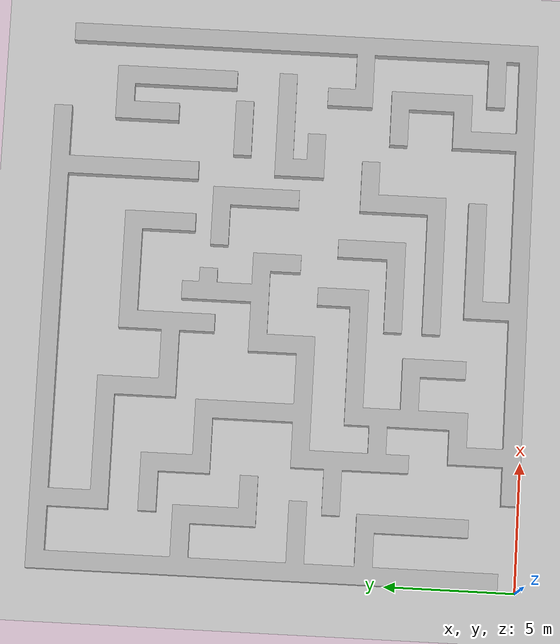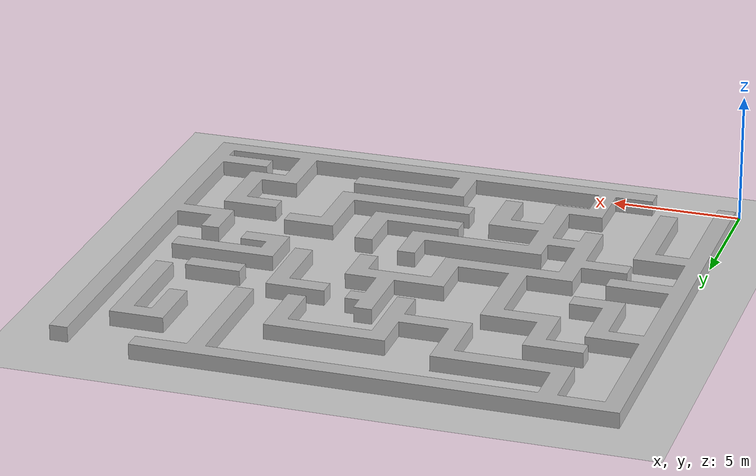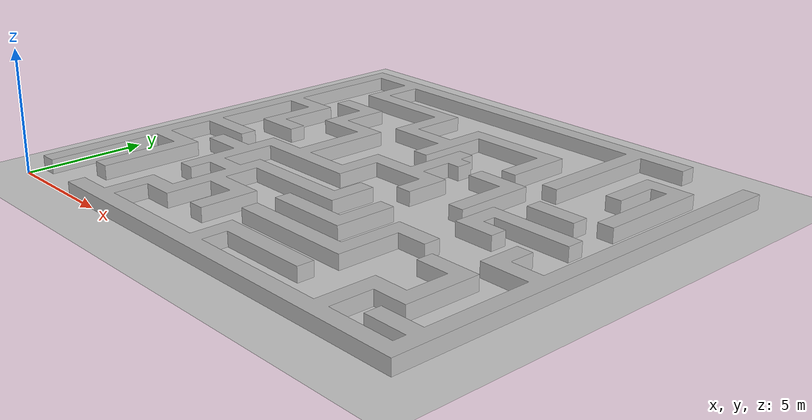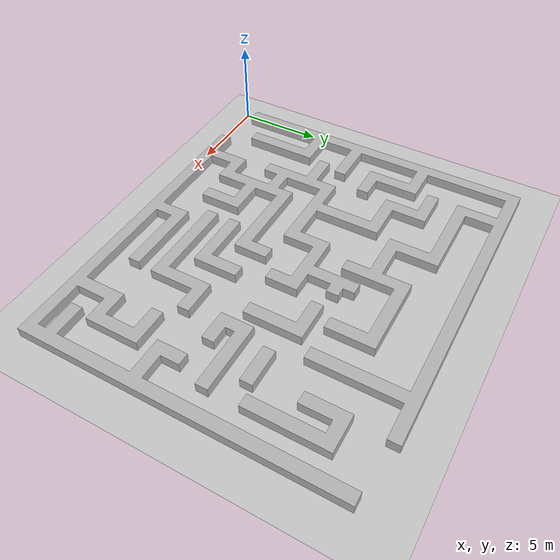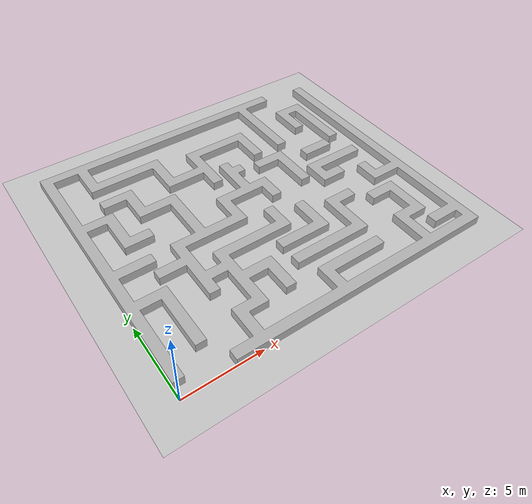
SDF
<?xml version="1.0" ?>
<sdf version="1.8">
  <world name="robocon_world">
    <plugin
      filename="gz-sim-sensors-system"
      name="gz::sim::systems::Sensors">
      <render_engine>ogre2</render_engine>
    </plugin>
    <physics name="1ms" type="ignored">
      <max_step_size>0.001</max_step_size>
      <real_time_factor>1.0</real_time_factor>
    </physics>
    <plugin
      filename="gz-sim-physics-system"
      name="gz::sim::systems::Physics">
    </plugin>
    <plugin
      filename="gz-sim-user-commands-system"
      name="gz::sim::systems::UserCommands">
    </plugin>
    <plugin
      filename="gz-sim-scene-broadcaster-system"
      name="gz::sim::systems::SceneBroadcaster">
    </plugin>
    <plugin filename="gz-sim-imu-system"
      name="gz::sim::systems::Imu">
    </plugin>

    <light type="directional" name="sun">
      <cast_shadows>true</cast_shadows>
      <pose>0 0 10 0 0 0</pose>
      <diffuse>0.8 0.8 0.8 1</diffuse>
      <specular>0.2 0.2 0.2 1</specular>
      <attenuation>
        <range>1000</range>
        <constant>0.9</constant>
        <linear>0.01</linear>
        <quadratic>0.001</quadratic>
      </attenuation>
      <direction>-0.5 0.1 -0.9</direction>
    </light>

    <model name="ground_plane">
      <static>true</static>
      <link name="link">
        <collision name="collision">
          <geometry>
            <plane>
              <normal>0 0 1</normal>
              <size>100 100</size>
            </plane>
          </geometry>
        </collision>
        <visual name="visual">
          <geometry>
            <plane>
              <normal>0 0 1</normal>
              <size>100 100</size>
            </plane>
          </geometry>
          <material>
            <ambient>0.8 0.8 0.8 1</ambient>
            <diffuse>0.8 0.8 0.8 1</diffuse>
            <specular>0.8 0.8 0.8 1</specular>
          </material>
        </visual>
      </link>
    </model>

    <model name="maze">
      <pose>0 0 0 0 0 0</pose>
      <static>true</static>
      <link name="body">
        <visual name="visual">
          <geometry>
            <mesh>
              <uri>file:///home/adios/Robotics_WS/Ros2_WS/src/maze_solver_bot/worlds/Maze.obj</uri>
              <scale>1.5 1.5 1.5</scale>
            </mesh>
          </geometry>
        </visual>
        <collision name="collision">
          <geometry>
            <mesh>
              <uri>file:///home/adios/Robotics_WS/Ros2_WS/src/maze_solver_bot/worlds/Maze.obj</uri>
              <scale>1.5 1.5 1.5</scale>
            </mesh>
          </geometry>
        </collision>
      </link>
    </model>
  </world>
</sdf>
